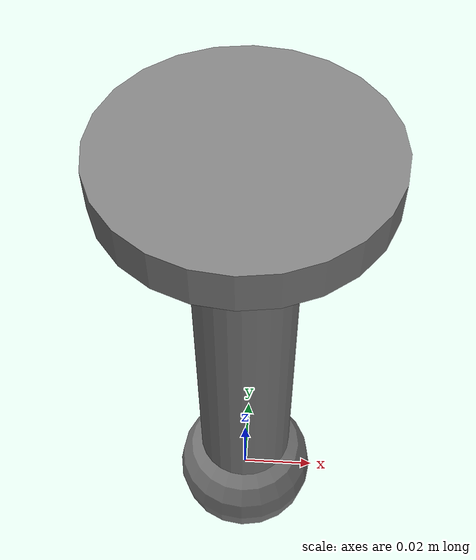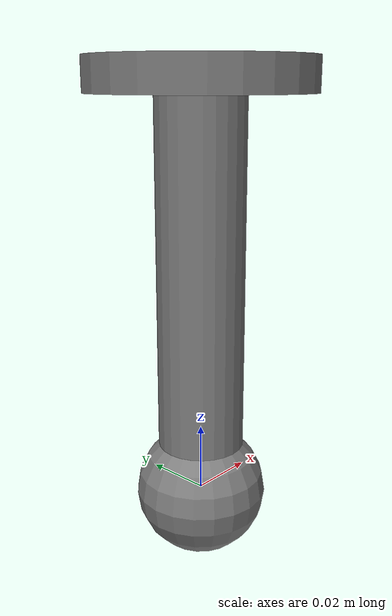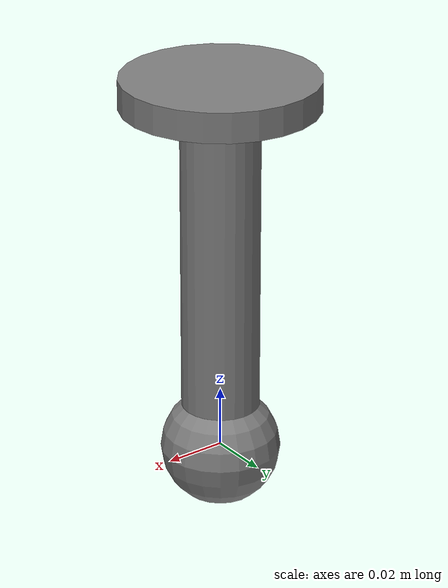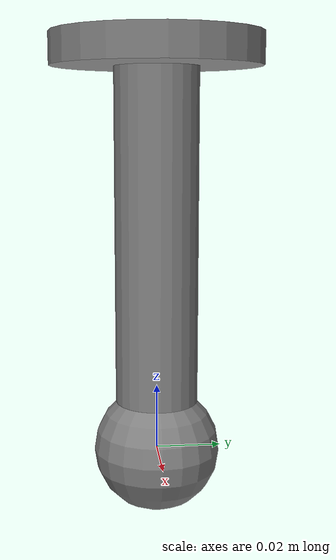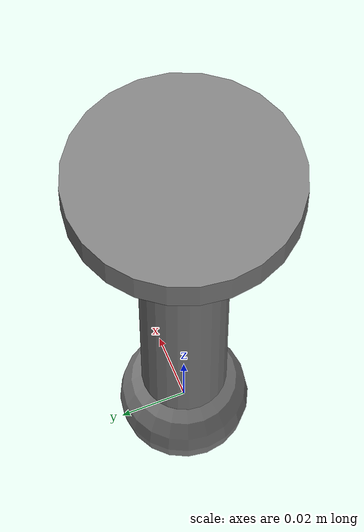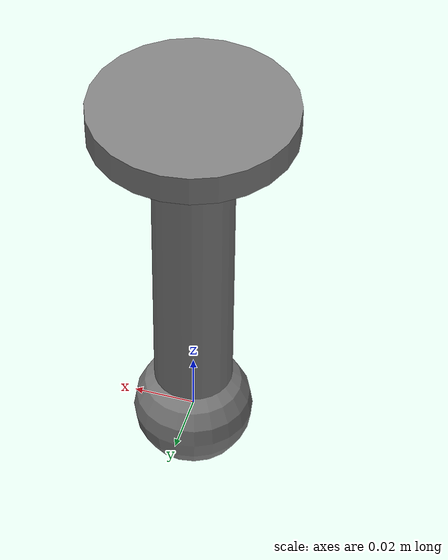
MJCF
<mujoco model="end_effector">
  <compiler angle="radian" meshdir="assets" autolimits="true"/>

  <option timestep="0.0005"/>

  <worldbody>
    <light name="top" pos="0 0 2" mode="trackcom"/>
    <body name="end_effector_tip" gravcomp="1">
      <!-- TODO:  check friction coefficients. -->
      <geom type="sphere" size="0.0195" mass="0.057" priority="1" condim="3" friction="0.6 .01 .003"/>
      <geom type="cylinder" size="0.0127 0.0508" mass="0.1340688" pos="0 0 0.0661" priority="1" condim="3"/>
      <geom type="cylinder" size="0.0315 0.0048" mass="0.0779312" pos="0 0 0.1217" priority="1" condim="3"/>
        <joint name="end_effector_x" type="slide" range="0.15 0.75" axis="1 0 0" limited="true"/>
          <joint name="end_effector_y" type="slide" range="-0.6 0.6" axis="0 1 0" limited="true"/>
            <joint name="end_effector_z" type="slide" range="-0.03 0.3" axis="0 0 1" limited="true"/>
            <site name="eeff" pos="0 0 0.0" group="3"/>
    </body>
  </worldbody>

  <actuator>
    <general site="eeff" refsite="world" gaintype="fixed" forcerange="-1.5 1.5" ctrlrange="-1 1" forcelimited="true" ctrllimited="true" gainprm="1.5" gear="1 0 0 0 0 0"/>
    <general site="eeff" refsite="world" gaintype="fixed" forcerange="-1.5 1.5" ctrlrange="-1 1" forcelimited="true" ctrllimited="true" gainprm="1.5" gear="0 1 0 0 0 0"/>
    <general site="eeff" refsite="world" gaintype="fixed" forcerange="-1.5 1.5" ctrlrange="-1 1" forcelimited="true" ctrllimited="true" gainprm="1.5" gear="0 0 1 0 0 0"/>
  </actuator>
</mujoco>
